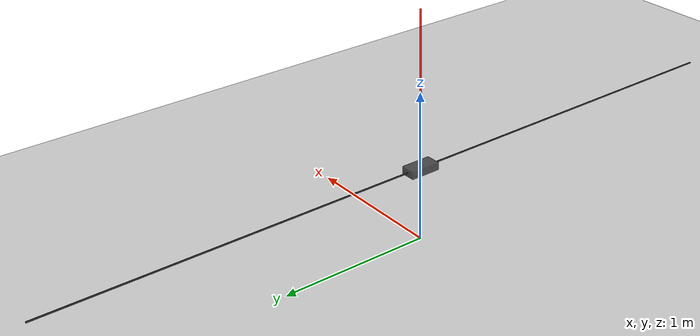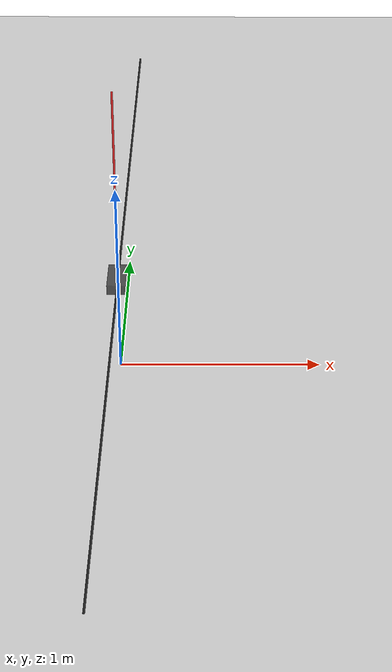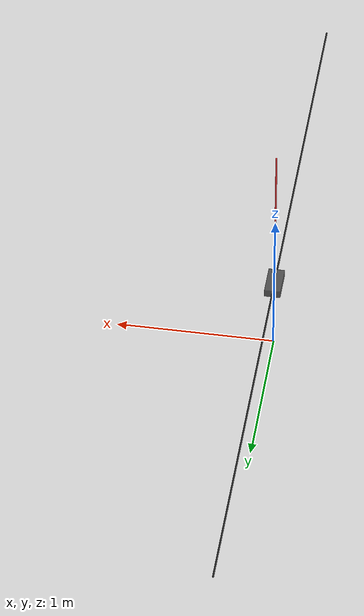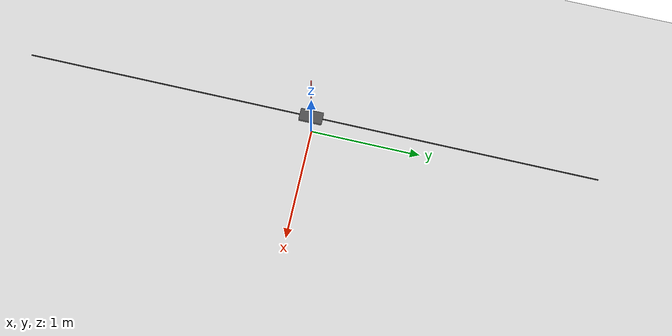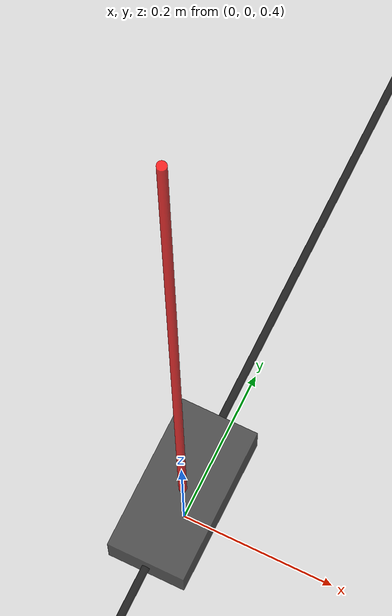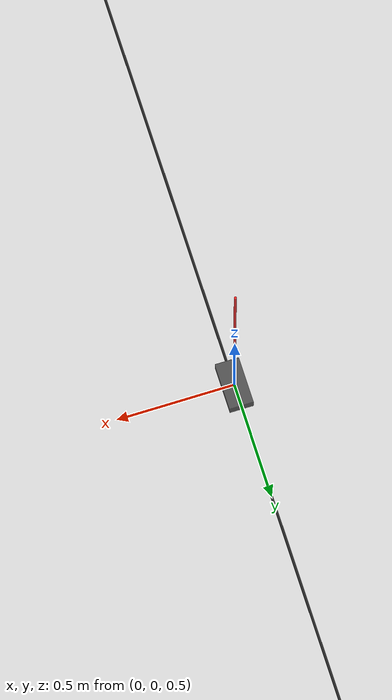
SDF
<?xml version='1.0' encoding='UTF-8'?>
<sdf version='1.6'>
  <world name='default'>

    <plugin filename='libignition-gazebo1-physics-system.so' name='ignition::gazebo::systems::Physics'>
    </plugin>
    <plugin filename='libignition-gazebo1-scene-broadcaster-system.so' name='ignition::gazebo::systems::SceneBroadcaster'>
    </plugin>
    <plugin filename='libignition-gazebo1-user-commands-system.so' name='ignition::gazebo::systems::UserCommands'>
    </plugin>

    <gui fullscreen='0'>
      <!-- 3D scene -->
      <plugin filename='Scene3D' name='3D View'>
        <ignition-gui>
          <title>3D View</title>
          <property type='bool' key='showTitleBar'>false</property>
          <property type='string' key='state'>docked</property>
        </ignition-gui>
        <engine>ogre</engine>
        <scene>scene</scene>
        <ambient_light>0.4 0.4 0.4</ambient_light>
        <background_color>0.8 0.8 0.8</background_color>
        <camera_pose>-6 0 6 0 0.5 0</camera_pose>
        <service>/world/default/scene/info</service>
        <pose_topic>/world/default/pose/info</pose_topic>
      </plugin>
      <!-- World control -->
      <plugin filename='WorldControl' name='World control'>
        <ignition-gui>
          <title>World control</title>
          <property type='bool' key='showTitleBar'>false</property>
          <property type='bool' key='resizable'>false</property>
          <property type='double' key='height'>72</property>
          <property type='double' key='width'>121</property>
          <property type='double' key='z'>1</property>
          <property type='string' key='state'>floating</property>
          <anchors target='3D View'>
            <line own='left' target='left'/>
            <line own='bottom' target='bottom'/>
          </anchors>
        </ignition-gui>
        <play_pause>true</play_pause>
        <step>true</step>
        <start_paused>true</start_paused>
        <service>/world/default/control</service>
        <stats_topic>/world/default/stats</stats_topic>
      </plugin>
      <!-- Grid 3D -->
    </gui>

    <model name='ground_plane'>
      <static>true</static>
      <link name='link'>
        <pose>0 0 -0.5 0 0 0</pose>
        <collision name='collision'>
          <geometry>
            <box>
              <size>100 100 1</size>
            </box>
          </geometry>
          <surface>
            <friction>
              <ode>
                <mu>100</mu>
                <mu2>50</mu2>
              </ode>
            </friction>
          </surface>
        </collision>
        <visual name='visual'>
          <cast_shadows>false</cast_shadows>
          <geometry>
            <box>
              <size>100 100 1</size>
            </box>
          </geometry>
          <material>
            <ambient>0.8 0.8 0.8 1</ambient>
            <diffuse>0.8 0.8 0.8 1</diffuse>
            <specular>0.8 0.8 0.8 1</specular>
          </material>
        </visual>
      </link>
    </model>

    <include>
      <pose>0 0 0 0 0 0</pose>
      <uri>CartPole</uri>
    </include>

  </world>
</sdf>

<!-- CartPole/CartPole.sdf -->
<sdf version='1.6'>
  <model name='cartpole_xacro'>
    <link name='rail'>
      <pose>0 0 0.5 0 -0 0</pose>
      <inertial>
        <pose>0 0 0 0 -0 0</pose>
        <mass>5</mass>
        <inertia>
          <ixx>100</ixx>
          <ixy>0</ixy>
          <ixz>0</ixz>
          <iyy>100</iyy>
          <iyz>0</iyz>
          <izz>100</izz>
        </inertia>
      </inertial>
      <visual name='rail_visual'>
        <pose>0 0 0 1.5708 -0 0</pose>
        <geometry>
          <cylinder>
            <length>5</length>
            <radius>0.005</radius>
          </cylinder>
        </geometry>
        <material>
          <ambient>0 0 0 0.8</ambient>
          <diffuse>0 0 0 0.8</diffuse>
          <specular>0 0 0 0.8</specular>
          <emissive>0 0 0 0.8</emissive>
        </material>
      </visual>
      <gravity>1</gravity>
      <velocity_decay/>
    </link>
    <joint name='world_to_rail' type='fixed'>
      <child>rail</child>
      <parent>world</parent>
    </joint>
    <link name='cart'>
      <pose>0 0 0.5 0 -0 0</pose>
      <inertial>
        <pose>0 0 0 0 -0 0</pose>
        <mass>1</mass>
        <inertia>
          <ixx>0.00354167</ixx>
          <ixy>0</ixy>
          <ixz>0</ixz>
          <iyy>0.00416667</iyy>
          <iyz>0</iyz>
          <izz>0.00104167</izz>
        </inertia>
      </inertial>
      <visual name='cart_visual'>
        <pose>0 0 0 0 -0 0</pose>
        <geometry>
          <box>
            <size>0.1 0.2 0.05</size>
          </box>
        </geometry>
        <material>
          <ambient>0.2 0.2 0.2 0.8</ambient>
          <diffuse>0.2 0.2 0.2 0.8</diffuse>
          <specular>0.2 0.2 0.2 0.8</specular>
          <emissive>0.2 0.2 0.2 0.8</emissive>
        </material>
      </visual>
      <gravity>1</gravity>
      <velocity_decay/>
    </link>
    <joint name='linear' type='prismatic'>
      <child>cart</child>
      <parent>rail</parent>
      <axis>
        <xyz>0 1 0</xyz>
        <limit>
          <lower>-2.4</lower>
          <upper>2.4</upper>
          <effort>500</effort>
          <velocity>10</velocity>
        </limit>
        <dynamics>
          <spring_reference>0</spring_reference>
          <spring_stiffness>0</spring_stiffness>
        </dynamics>
        <use_parent_model_frame>1</use_parent_model_frame>
      </axis>
    </joint>
    <link name='pole'>
      <pose>0 0 0.525 0 -0 0</pose>
      <inertial>
        <pose>0 0 0.5 0 -0 0</pose>
        <mass>0.1</mass>
        <inertia>
          <ixx>0.00833396</ixx>
          <ixy>0</ixy>
          <ixz>0</ixz>
          <iyy>0.00833396</iyy>
          <iyz>0</iyz>
          <izz>1.25e-06</izz>
        </inertia>
      </inertial>
      <visual name='pole_visual'>
        <pose>0 0 0.5 0 -0 0</pose>
        <geometry>
          <cylinder>
            <length>1</length>
            <radius>0.005</radius>
          </cylinder>
        </geometry>
        <material>
          <ambient>1 0 0 0.8</ambient>
          <diffuse>1 0 0 0.8</diffuse>
          <specular>1 0 0 0.8</specular>
          <emissive>1 0 0 0.8</emissive>
        </material>
      </visual>
      <gravity>1</gravity>
      <velocity_decay/>
    </link>
    <joint name='pivot' type='revolute'>
      <child>pole</child>
      <parent>cart</parent>
      <axis>
        <xyz>1 0 0</xyz>
        <limit>
          <lower>-1e+16</lower>
          <upper>1e+16</upper>
        </limit>
        <dynamics>
          <spring_reference>0</spring_reference>
          <spring_stiffness>0</spring_stiffness>
        </dynamics>
        <use_parent_model_frame>1</use_parent_model_frame>
      </axis>
    </joint>
  </model>
</sdf>
